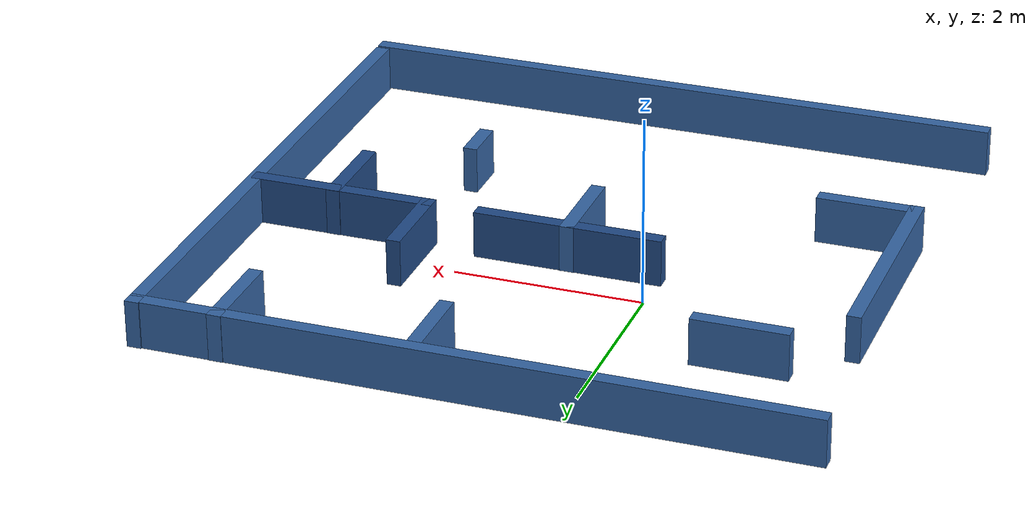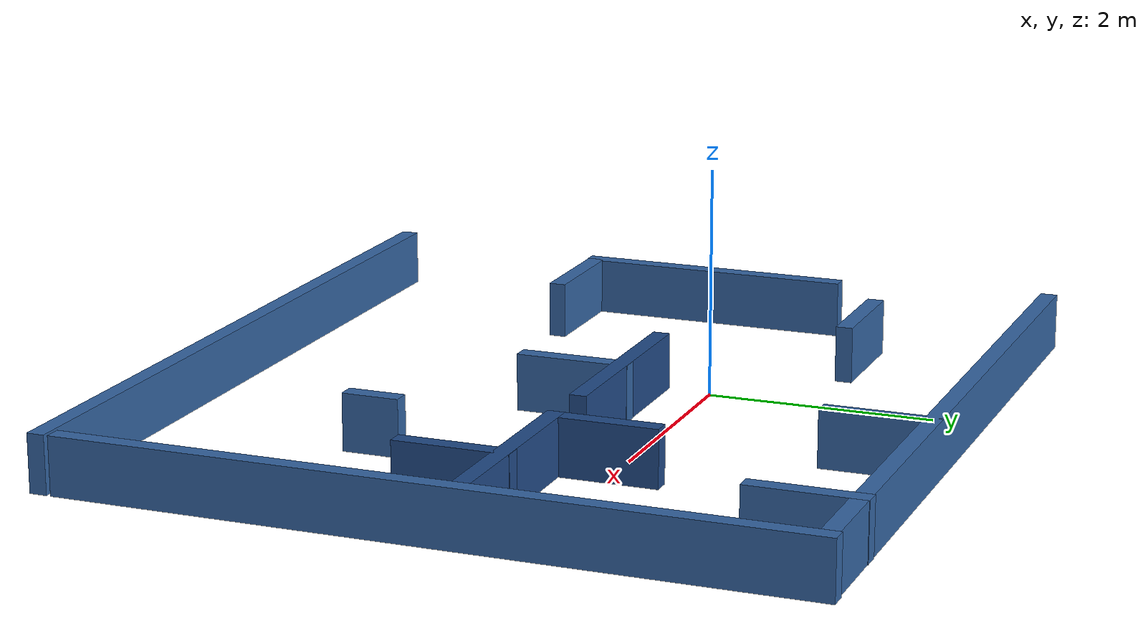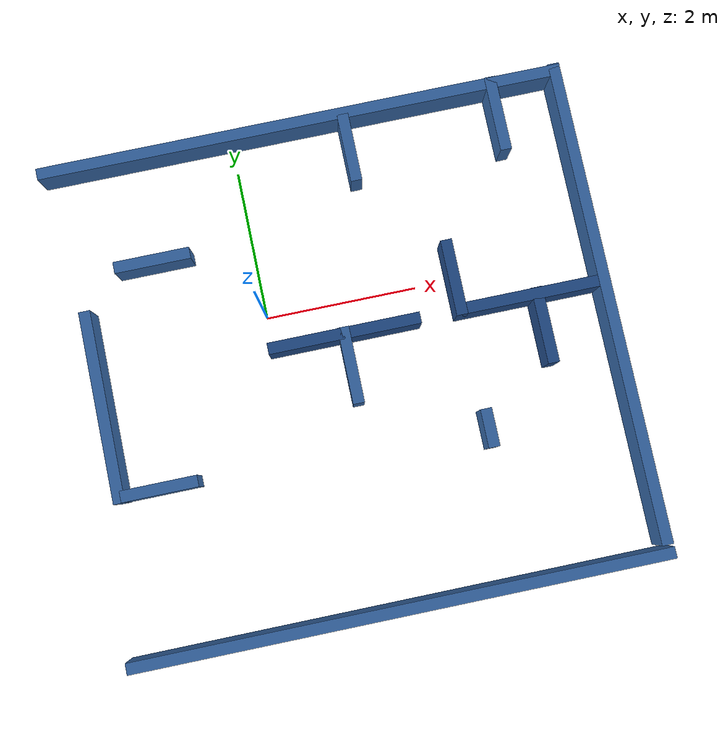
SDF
<?xml version='1.0'?>
<sdf version='1.7'>
  <model name='maze_world'>
    <pose>0.945 -0.532439 0 0 -0 0</pose>
    <link name='Wall_0'>
      <collision name='Wall_0_Collision'>
        <geometry>
          <box>
            <size>7 0.15 0.5</size>
          </box>
        </geometry>
        <pose>0 0 0.25 0 -0 0</pose>
      </collision>
      <visual name='Wall_0_Visual'>
        <pose>0 0 0.25 0 -0 0</pose>
        <geometry>
          <box>
            <size>7 0.15 0.5</size>
          </box>
        </geometry>
        <material>
          <script>
            <uri>file://media/materials/scripts/gazebo.material</uri>
            <name>Gazebo/Grey</name>
          </script>
          <ambient>0.203922 0.396078 0.643137 1</ambient>
        </material>
        <meta>
          <layer>0</layer>
        </meta>
      </visual>
      <pose>-0 2.92244 0 0 -0 0</pose>
    </link>
    <link name='Wall_1'>
      <collision name='Wall_1_Collision'>
        <geometry>
          <box>
            <size>6.4 0.15 0.5</size>
          </box>
        </geometry>
        <pose>0 0 0.25 0 -0 0</pose>
      </collision>
      <visual name='Wall_1_Visual'>
        <pose>0 0 0.25 0 -0 0</pose>
        <geometry>
          <box>
            <size>6.4 0.15 0.5</size>
          </box>
        </geometry>
        <material>
          <script>
            <uri>file://media/materials/scripts/gazebo.material</uri>
            <name>Gazebo/Grey</name>
          </script>
          <ambient>0.203922 0.396078 0.643137 1</ambient>
        </material>
        <meta>
          <layer>0</layer>
        </meta>
      </visual>
      <pose>3.425 -0.19 0 0 -0 -1.5708</pose>
    </link>
    <link name='Wall_10'>
      <collision name='Wall_10_Collision'>
        <geometry>
          <box>
            <size>1 0.15 0.5</size>
          </box>
        </geometry>
        <pose>0 0 0.25 0 -0 0</pose>
      </collision>
      <visual name='Wall_10_Visual'>
        <pose>0 0 0.25 0 -0 0</pose>
        <geometry>
          <box>
            <size>1 0.15 0.5</size>
          </box>
        </geometry>
        <material>
          <script>
            <uri>file://media/materials/scripts/gazebo.material</uri>
            <name>Gazebo/Grey</name>
          </script>
          <ambient>0.203922 0.396078 0.643137 1</ambient>
        </material>
        <meta>
          <layer>0</layer>
        </meta>
      </visual>
      <pose>2.565 2.50256 0 0 -0 1.5708</pose>
    </link>
    <link name='Wall_12'>
      <collision name='Wall_12_Collision'>
        <geometry>
          <box>
            <size>1 0.15 0.5</size>
          </box>
        </geometry>
        <pose>0 0 0.25 0 -0 0</pose>
      </collision>
      <visual name='Wall_12_Visual'>
        <pose>0 0 0.25 0 -0 0</pose>
        <geometry>
          <box>
            <size>1 0.15 0.5</size>
          </box>
        </geometry>
        <material>
          <script>
            <uri>file://media/materials/scripts/gazebo.material</uri>
            <name>Gazebo/Grey</name>
          </script>
          <ambient>0.12549 0.290196 0.529412 1</ambient>
        </material>
        <meta>
          <layer>0</layer>
        </meta>
      </visual>
      <pose>1.535 0.487439 0 0 -0 -1.5708</pose>
    </link>
    <link name='Wall_13'>
      <collision name='Wall_13_Collision'>
        <geometry>
          <box>
            <size>2 0.15 0.5</size>
          </box>
        </geometry>
        <pose>0 0 0.25 0 -0 0</pose>
      </collision>
      <visual name='Wall_13_Visual'>
        <pose>0 0 0.25 0 -0 0</pose>
        <geometry>
          <box>
            <size>2 0.15 0.5</size>
          </box>
        </geometry>
        <material>
          <script>
            <uri>file://media/materials/scripts/gazebo.material</uri>
            <name>Gazebo/Grey</name>
          </script>
          <ambient>0.12549 0.290196 0.529412 1</ambient>
        </material>
        <meta>
          <layer>0</layer>
        </meta>
      </visual>
      <pose>0.0 0.062439 0 0 -0 3.14159</pose>
    </link>
    <link name='Wall_15'>
      <collision name='Wall_15_Collision'>
        <geometry>
          <box>
            <size>2 0.15 0.5</size>
          </box>
        </geometry>
        <pose>0 0 0.25 0 -0 0</pose>
      </collision>
      <visual name='Wall_15_Visual'>
        <pose>0 0 0.25 0 -0 0</pose>
        <geometry>
          <box>
            <size>2 0.15 0.5</size>
          </box>
        </geometry>
        <material>
          <script>
            <uri>file://media/materials/scripts/gazebo.material</uri>
            <name>Gazebo/Grey</name>
          </script>
          <ambient>0.12549 0.290196 0.529412 1</ambient>
        </material>
        <meta>
          <layer>0</layer>
        </meta>
      </visual>
      <pose>2.46 0.062439 0 0 -0 0</pose>
    </link>

    <link name='Wall_19'>
      <collision name='Wall_19_Collision'>
        <geometry>
          <box>
            <size>1 0.15 0.5</size>
          </box>
        </geometry>
        <pose>0 0 0.25 0 -0 0</pose>
      </collision>
      <visual name='Wall_19_Visual'>
        <pose>0 0 0.25 0 -0 0</pose>
        <geometry>
          <box>
            <size>1 0.15 0.5</size>
          </box>
        </geometry>
        <material>
          <script>
            <uri>file://media/materials/scripts/gazebo.material</uri>
            <name>Gazebo/Grey</name>
          </script>
          <ambient>0.12549 0.290196 0.529412 1</ambient>
        </material>
        <meta>
          <layer>0</layer>
        </meta>
      </visual>
      <pose>2.545 -0.357561 0 0 -0 -1.5708</pose>
    </link>
    <link name='Wall_2'>
      <collision name='Wall_2_Collision'>
        <geometry>
          <box>
            <size>7 0.15 0.5</size>
          </box>
        </geometry>
        <pose>0 0 0.25 0 -0 0</pose>
      </collision>
      <visual name='Wall_2_Visual'>
        <pose>0 0 0.25 0 -0 0</pose>
        <geometry>
          <box>
            <size>7 0.15 0.5</size>
          </box>
        </geometry>
        <material>
          <script>
            <uri>file://media/materials/scripts/gazebo.material</uri>
            <name>Gazebo/Grey</name>
          </script>
          <ambient>0.203922 0.396078 0.643137 1</ambient>
        </material>
        <meta>
          <layer>0</layer>
        </meta>
      </visual>
      <pose>-0 -3.5 0 0 -0 3.14159</pose>
    </link>
    <link name='Wall_21'>
      <collision name='Wall_21_Collision'>
        <geometry>
          <box>
            <size>1 0.15 0.5</size>
          </box>
        </geometry>
        <pose>0 0 0.25 0 -0 0</pose>
      </collision>
      <visual name='Wall_21_Visual'>
        <pose>0 0 0.25 0 -0 0</pose>
        <geometry>
          <box>
            <size>1 0.15 0.5</size>
          </box>
        </geometry>
        <material>
          <script>
            <uri>file://media/materials/scripts/gazebo.material</uri>
            <name>Gazebo/Grey</name>
          </script>
          <ambient>0.203922 0.396078 0.643137 1</ambient>
        </material>
        <meta>
          <layer>0</layer>
        </meta>
      </visual>
      <pose>0 -0.357561 0 0 -0 1.5708</pose>
    </link>
    <link name='Wall_23'>
      <collision name='Wall_23_Collision'>
        <geometry>
          <box>
            <size>0.5 0.15 0.5</size>
          </box>
        </geometry>
        <pose>0 0 0.25 0 -0 0</pose>
      </collision>
      <visual name='Wall_23_Visual'>
        <pose>0 0 0.25 0 -0 0</pose>
        <geometry>
          <box>
            <size>0.5 0.15 0.5</size>
          </box>
        </geometry>
        <material>
          <script>
            <uri>file://media/materials/scripts/gazebo.material</uri>
            <name>Gazebo/Grey</name>
          </script>
          <ambient>0.203922 0.396078 0.643137 1</ambient>
        </material>
        <meta>
          <layer>0</layer>
        </meta>
      </visual>
      <pose>1.565 -1.50256 0 0 -0 1.5708</pose>
    </link>
    <link name='Wall_4'>
      <collision name='Wall_4_Collision'>
        <geometry>
          <box>
            <size>1 0.15 0.5</size>
          </box>
        </geometry>
        <pose>0 0 0.25 0 -0 0</pose>
      </collision>
      <visual name='Wall_4_Visual'>
        <pose>0 0 0.25 0 -0 0</pose>
        <geometry>
          <box>
            <size>1 0.15 0.5</size>
          </box>
        </geometry>
        <material>
          <script>
            <uri>file://media/materials/scripts/gazebo.material</uri>
            <name>Gazebo/Grey</name>
          </script>
          <ambient>0.203922 0.396078 0.643137 1</ambient>
        </material>
        <meta>
          <layer>0</layer>
        </meta>
      </visual>
      <pose>-2.24 1.5 0 0 -0 3.14159</pose>
    </link>
    <link name='Wall_5'>
      <collision name='Wall_5_Collision'>
        <geometry>
          <box>
            <size>2.5 0.15 0.5</size>
          </box>
        </geometry>
        <pose>0 0 0.25 0 -0 0</pose>
      </collision>
      <visual name='Wall_5_Visual'>
        <pose>0 0 0.25 0 -0 0</pose>
        <geometry>
          <box>
            <size>2.5 0.15 0.5</size>
          </box>
        </geometry>
        <material>
          <script>
            <uri>file://media/materials/scripts/gazebo.material</uri>
            <name>Gazebo/Grey</name>
          </script>
          <ambient>0.203922 0.396078 0.643137 1</ambient>
        </material>
        <meta>
          <layer>0</layer>
        </meta>
      </visual>
      <pose>-3.215 -0.23 0 0 -0 -1.5708</pose>
    </link>
    <link name='Wall_6'>
      <collision name='Wall_6_Collision'>
        <geometry>
          <box>
            <size>1.0 0.15 0.5</size>
          </box>
        </geometry>
        <pose>0 0 0.25 0 -0 0</pose>
      </collision>
      <visual name='Wall_6_Visual'>
        <pose>0 0 0.25 0 -0 0</pose>
        <geometry>
          <box>
            <size>1.0 0.15 0.5</size>
          </box>
        </geometry>
        <material>
          <script>
            <uri>file://media/materials/scripts/gazebo.material</uri>
            <name>Gazebo/Grey</name>
          </script>
          <ambient>0.203922 0.396078 0.643137 1</ambient>
        </material>
        <meta>
          <layer>0</layer>
        </meta>
      </visual>
      <pose>-2.69 -1.4 0 0 -0 0</pose>
    </link>
    <link name='Wall_8'>
      <collision name='Wall_8_Collision'>
        <geometry>
          <box>
            <size>1 0.15 0.5</size>
          </box>
        </geometry>
        <pose>0 0 0.25 0 -0 0</pose>
      </collision>
      <visual name='Wall_8_Visual'>
        <pose>0 0 0.25 0 -0 0</pose>
        <geometry>
          <box>
            <size>1 0.15 0.5</size>
          </box>
        </geometry>
        <material>
          <script>
            <uri>file://media/materials/scripts/gazebo.material</uri>
            <name>Gazebo/Grey</name>
          </script>
          <ambient>0.203922 0.396078 0.643137 1</ambient>
        </material>
        <meta>
          <layer>0</layer>
        </meta>
      </visual>
      <pose>0.565 2.49496 0 0 -0 1.5708</pose>
    </link>
    <static>1</static>
  </model>
</sdf>
